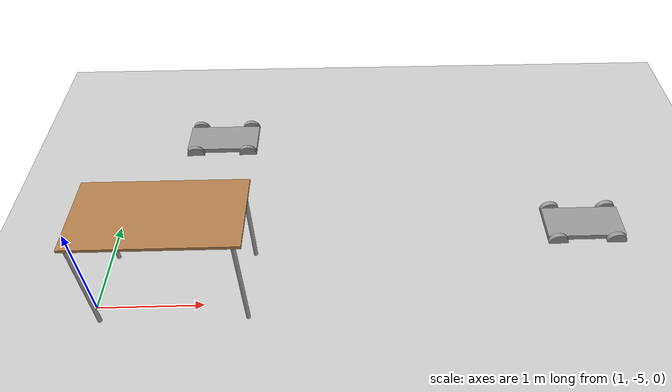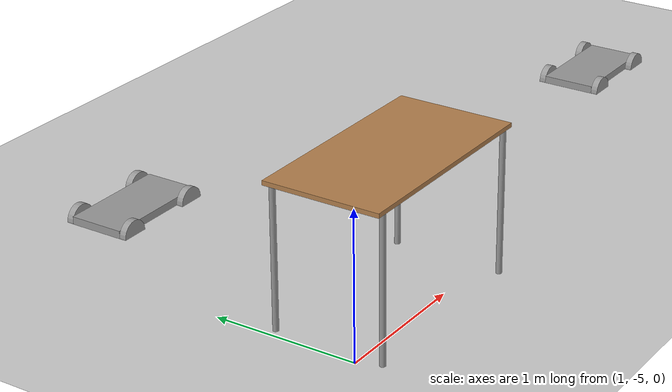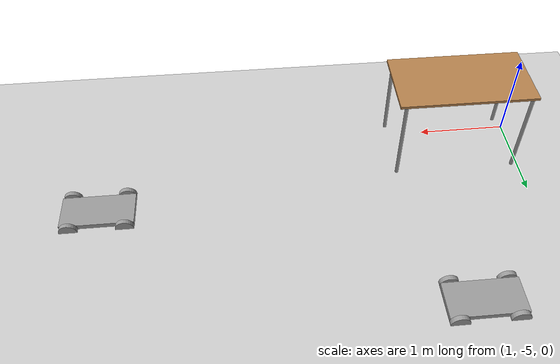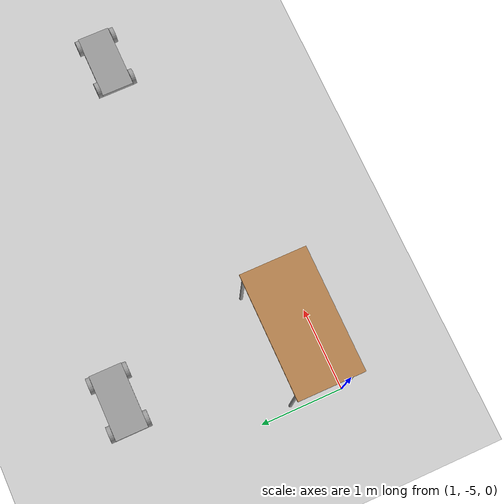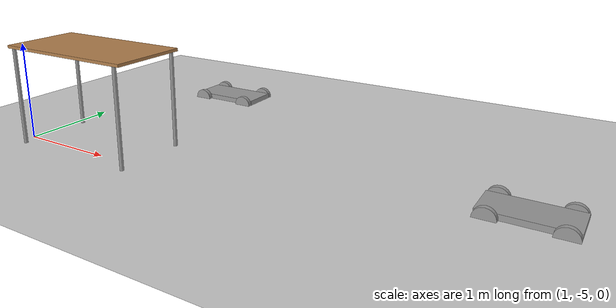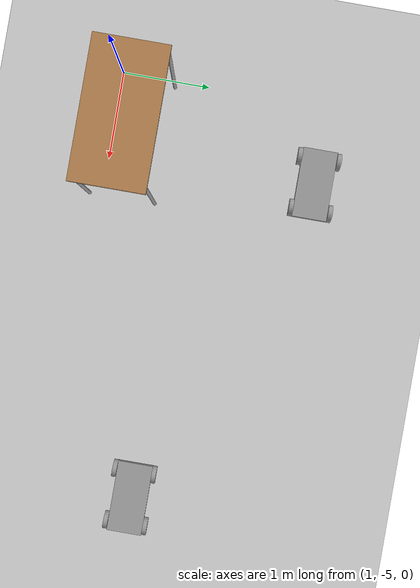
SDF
<sdf version="1.7">
 <world name="default">
  <model name="ground_plane">
   <static>1</static>
   <link name="link">
    <collision name="collision">
     <geometry><plane><normal>0 0 1</normal><size>100 100</size></plane></geometry>
     <surface>
      <contact><collide_bitmask>65535</collide_bitmask></contact>
      <friction><ode><mu>100</mu><mu2>50</mu2></ode></friction>
     </surface>
    </collision>
    <visual name="visual">
     <cast_shadows>0</cast_shadows>
     <geometry><plane><normal>0 0 1</normal><size>100 100</size></plane></geometry>
     <material>
      <script><uri>file://media/materials/scripts/gazebo.material</uri><name>Gazebo/Grey</name></script>
     </material>
    </visual>
   </link>
  </model>
  <model name="table">
   <static>1</static>
   <link name="link">
    <collision name="surface">
     <pose>0 0 1 0 -0 0</pose>
     <geometry><box><size>1.5 0.8 0.03</size></box></geometry>
     <surface><friction><ode><mu>0.6</mu><mu2>0.6</mu2></ode></friction></surface>
    </collision>
    <visual name="visual1">
     <pose>0 0 1 0 -0 0</pose>
     <geometry><box><size>1.5 0.8 0.03</size></box></geometry>
     <material>
      <script><uri>file://media/materials/scripts/gazebo.material</uri><name>Gazebo/Wood</name></script>
     </material>
    </visual>
    <collision name="front_left_leg">
     <pose>0.68 0.38 0.5 0 -0 0</pose>
     <geometry><cylinder><radius>0.02</radius><length>1</length></cylinder></geometry>
    </collision>
    <visual name="front_left_leg">
     <pose>0.68 0.38 0.5 0 -0 0</pose>
     <geometry><cylinder><radius>0.02</radius><length>1</length></cylinder></geometry>
     <material>
      <script><uri>file://media/materials/scripts/gazebo.material</uri><name>Gazebo/Grey</name></script>
     </material>
    </visual>
    <collision name="front_right_leg">
     <pose>0.68 -0.38 0.5 0 -0 0</pose>
     <geometry><cylinder><radius>0.02</radius><length>1</length></cylinder></geometry>
    </collision>
    <visual name="front_right_leg">
     <pose>0.68 -0.38 0.5 0 -0 0</pose>
     <geometry><cylinder><radius>0.02</radius><length>1</length></cylinder></geometry>
     <material>
      <script><uri>file://media/materials/scripts/gazebo.material</uri><name>Gazebo/Grey</name></script>
     </material>
    </visual>
    <collision name="back_right_leg">
     <pose>-0.68 -0.38 0.5 0 -0 0</pose>
     <geometry><cylinder><radius>0.02</radius><length>1</length></cylinder></geometry>
    </collision>
    <visual name="back_right_leg">
     <pose>-0.68 -0.38 0.5 0 -0 0</pose>
     <geometry><cylinder><radius>0.02</radius><length>1</length></cylinder></geometry>
     <material>
      <script><uri>file://media/materials/scripts/gazebo.material</uri><name>Gazebo/Grey</name></script>
     </material>
    </visual>
    <collision name="back_left_leg">
     <pose>-0.68 0.38 0.5 0 -0 0</pose>
     <geometry><cylinder><radius>0.02</radius><length>1</length></cylinder></geometry>
    </collision>
    <visual name="back_left_leg">
     <pose>-0.68 0.38 0.5 0 -0 0</pose>
     <geometry><cylinder><radius>0.02</radius><length>1</length></cylinder></geometry>
     <material>
      <script><uri>file://media/materials/scripts/gazebo.material</uri><name>Gazebo/Grey</name></script>
     </material>
    </visual>
   </link>
   <pose>1.7456 -4.76892 0 0 -0 0</pose>
  </model>
  <model name="FourWheelRobot_0">
   <link name="link_1">
    <pose>-0.3 -0.225 -0 1.5708 -0 0</pose>
    <inertial>
     <mass>1</mass>
     <inertia><ixx>0.145833</ixx><ixy>0</ixy><ixz>0</ixz><iyy>0.145833</iyy><iyz>0</iyz><izz>0.125</izz></inertia>
    </inertial>
    <visual name="visual">
     <geometry><cylinder><radius>0.1</radius><length>0.05</length></cylinder></geometry>
     <material>
      <lighting>1</lighting>
      <script><uri>file://media/materials/scripts/gazebo.material</uri><name>Gazebo/Grey</name></script>
      <shader type="pixel"><normal_map>__default__</normal_map></shader>
      <ambient>0.3 0.3 0.3 1</ambient>
      <diffuse>0.7 0.7 0.7 1</diffuse>
      <specular>0.01 0.01 0.01 1</specular>
      <emissive>0 0 0 1</emissive>
     </material>
    </visual>
    <collision name="collision">
     <geometry><cylinder><radius>0.1</radius><length>0.05</length></cylinder></geometry>
     <surface>
      <friction>
       <ode><mu>1</mu><mu2>1</mu2><fdir1>0 0 0</fdir1><slip1>0</slip1><slip2>0</slip2></ode>
       <torsional>
        <coefficient>1</coefficient>
        <patch_radius>0</patch_radius>
        <surface_radius>0</surface_radius>
        <use_patch_radius>1</use_patch_radius>
        <ode><slip>0</slip></ode>
       </torsional>
      </friction>
      <bounce><restitution_coefficient>0</restitution_coefficient><threshold>1e+06</threshold></bounce>
      <contact>
       <collide_without_contact>0</collide_without_contact>
       <collide_without_contact_bitmask>1</collide_without_contact_bitmask>
       <collide_bitmask>1</collide_bitmask>
       <ode>
        <soft_cfm>0</soft_cfm>
        <soft_erp>0.2</soft_erp>
        <kp>1e+13</kp>
        <kd>1</kd>
        <max_vel>0.01</max_vel>
        <min_depth>0</min_depth>
       </ode>
       <bullet>
        <split_impulse>1</split_impulse>
        <split_impulse_penetration_threshold>-0.01</split_impulse_penetration_threshold>
        <soft_cfm>0</soft_cfm>
        <soft_erp>0.2</soft_erp>
        <kp>1e+13</kp>
        <kd>1</kd>
       </bullet>
      </contact>
     </surface>
    </collision>
   </link>
   <link name="link_1_clone">
    <pose>-0.3 0.225 -0 1.5708 -0 0</pose>
    <inertial>
     <mass>1</mass>
     <inertia><ixx>0.145833</ixx><ixy>0</ixy><ixz>0</ixz><iyy>0.145833</iyy><iyz>0</iyz><izz>0.125</izz></inertia>
    </inertial>
    <visual name="visual">
     <geometry><cylinder><radius>0.1</radius><length>0.05</length></cylinder></geometry>
     <material>
      <lighting>1</lighting>
      <script><uri>file://media/materials/scripts/gazebo.material</uri><name>Gazebo/Grey</name></script>
      <shader type="pixel"><normal_map>__default__</normal_map></shader>
      <ambient>0.3 0.3 0.3 1</ambient>
      <diffuse>0.7 0.7 0.7 1</diffuse>
      <specular>0.01 0.01 0.01 1</specular>
      <emissive>0 0 0 1</emissive>
     </material>
    </visual>
    <collision name="collision">
     <geometry><cylinder><radius>0.1</radius><length>0.05</length></cylinder></geometry>
     <surface>
      <friction>
       <ode><mu>1</mu><mu2>1</mu2><fdir1>0 0 0</fdir1><slip1>0</slip1><slip2>0</slip2></ode>
       <torsional>
        <coefficient>1</coefficient>
        <patch_radius>0</patch_radius>
        <surface_radius>0</surface_radius>
        <use_patch_radius>1</use_patch_radius>
        <ode><slip>0</slip></ode>
       </torsional>
      </friction>
      <bounce><restitution_coefficient>0</restitution_coefficient><threshold>1e+06</threshold></bounce>
      <contact>
       <collide_without_contact>0</collide_without_contact>
       <collide_without_contact_bitmask>1</collide_without_contact_bitmask>
       <collide_bitmask>1</collide_bitmask>
       <ode>
        <soft_cfm>0</soft_cfm>
        <soft_erp>0.2</soft_erp>
        <kp>1e+13</kp>
        <kd>1</kd>
        <max_vel>0.01</max_vel>
        <min_depth>0</min_depth>
       </ode>
       <bullet>
        <split_impulse>1</split_impulse>
        <split_impulse_penetration_threshold>-0.01</split_impulse_penetration_threshold>
        <soft_cfm>0</soft_cfm>
        <soft_erp>0.2</soft_erp>
        <kp>1e+13</kp>
        <kd>1</kd>
       </bullet>
      </contact>
     </surface>
    </collision>
   </link>
   <link name="link_1_clone_0">
    <pose>0.3 -0.225 -0 1.5708 -0 0</pose>
    <inertial>
     <mass>1</mass>
     <inertia><ixx>0.145833</ixx><ixy>0</ixy><ixz>0</ixz><iyy>0.145833</iyy><iyz>0</iyz><izz>0.125</izz></inertia>
    </inertial>
    <visual name="visual">
     <geometry><cylinder><radius>0.1</radius><length>0.05</length></cylinder></geometry>
     <material>
      <lighting>1</lighting>
      <script><uri>file://media/materials/scripts/gazebo.material</uri><name>Gazebo/Grey</name></script>
      <shader type="pixel"><normal_map>__default__</normal_map></shader>
      <ambient>0.3 0.3 0.3 1</ambient>
      <diffuse>0.7 0.7 0.7 1</diffuse>
      <specular>0.01 0.01 0.01 1</specular>
      <emissive>0 0 0 1</emissive>
     </material>
    </visual>
    <collision name="collision">
     <geometry><cylinder><radius>0.1</radius><length>0.05</length></cylinder></geometry>
     <surface>
      <friction>
       <ode><mu>1</mu><mu2>1</mu2><fdir1>0 0 0</fdir1><slip1>0</slip1><slip2>0</slip2></ode>
       <torsional>
        <coefficient>1</coefficient>
        <patch_radius>0</patch_radius>
        <surface_radius>0</surface_radius>
        <use_patch_radius>1</use_patch_radius>
        <ode><slip>0</slip></ode>
       </torsional>
      </friction>
      <bounce><restitution_coefficient>0</restitution_coefficient><threshold>1e+06</threshold></bounce>
      <contact>
       <collide_without_contact>0</collide_without_contact>
       <collide_without_contact_bitmask>1</collide_without_contact_bitmask>
       <collide_bitmask>1</collide_bitmask>
       <ode>
        <soft_cfm>0</soft_cfm>
        <soft_erp>0.2</soft_erp>
        <kp>1e+13</kp>
        <kd>1</kd>
        <max_vel>0.01</max_vel>
        <min_depth>0</min_depth>
       </ode>
       <bullet>
        <split_impulse>1</split_impulse>
        <split_impulse_penetration_threshold>-0.01</split_impulse_penetration_threshold>
        <soft_cfm>0</soft_cfm>
        <soft_erp>0.2</soft_erp>
        <kp>1e+13</kp>
        <kd>1</kd>
       </bullet>
      </contact>
     </surface>
    </collision>
   </link>
   <link name="link_1_clone_1">
    <pose>0.3 0.225 -0 1.5708 -0 0</pose>
    <inertial>
     <mass>1</mass>
     <inertia><ixx>0.145833</ixx><ixy>0</ixy><ixz>0</ixz><iyy>0.145833</iyy><iyz>0</iyz><izz>0.125</izz></inertia>
    </inertial>
    <visual name="visual">
     <geometry><cylinder><radius>0.1</radius><length>0.05</length></cylinder></geometry>
     <material>
      <lighting>1</lighting>
      <script><uri>file://media/materials/scripts/gazebo.material</uri><name>Gazebo/Grey</name></script>
      <shader type="pixel"><normal_map>__default__</normal_map></shader>
      <ambient>0.3 0.3 0.3 1</ambient>
      <diffuse>0.7 0.7 0.7 1</diffuse>
      <specular>0.01 0.01 0.01 1</specular>
      <emissive>0 0 0 1</emissive>
     </material>
    </visual>
    <collision name="collision">
     <geometry><cylinder><radius>0.1</radius><length>0.05</length></cylinder></geometry>
     <surface>
      <friction>
       <ode><mu>1</mu><mu2>1</mu2><fdir1>0 0 0</fdir1><slip1>0</slip1><slip2>0</slip2></ode>
       <torsional>
        <coefficient>1</coefficient>
        <patch_radius>0</patch_radius>
        <surface_radius>0</surface_radius>
        <use_patch_radius>1</use_patch_radius>
        <ode><slip>0</slip></ode>
       </torsional>
      </friction>
      <bounce><restitution_coefficient>0</restitution_coefficient><threshold>1e+06</threshold></bounce>
      <contact>
       <collide_without_contact>0</collide_without_contact>
       <collide_without_contact_bitmask>1</collide_without_contact_bitmask>
       <collide_bitmask>1</collide_bitmask>
       <ode>
        <soft_cfm>0</soft_cfm>
        <soft_erp>0.2</soft_erp>
        <kp>1e+13</kp>
        <kd>1</kd>
        <max_vel>0.01</max_vel>
        <min_depth>0</min_depth>
       </ode>
       <bullet>
        <split_impulse>1</split_impulse>
        <split_impulse_penetration_threshold>-0.01</split_impulse_penetration_threshold>
        <soft_cfm>0</soft_cfm>
        <soft_erp>0.2</soft_erp>
        <kp>1e+13</kp>
        <kd>1</kd>
       </bullet>
      </contact>
     </surface>
    </collision>
   </link>
   <link name="link_2">
    <pose>0 0 2e-06 0 -0 0</pose>
    <inertial>
     <mass>1</mass>
     <inertia>
      <ixx>0.166667</ixx>
      <ixy>0</ixy>
      <ixz>0</ixz>
      <iyy>0.166667</iyy>
      <iyz>0</iyz>
      <izz>0.166667</izz>
     </inertia>
    </inertial>
    <visual name="visual">
     <geometry><box><size>0.8 0.4 0.1</size></box></geometry>
     <material>
      <lighting>1</lighting>
      <script><uri>file://media/materials/scripts/gazebo.material</uri><name>Gazebo/Grey</name></script>
      <shader type="pixel"><normal_map>__default__</normal_map></shader>
      <ambient>0.3 0.3 0.3 1</ambient>
      <diffuse>0.7 0.7 0.7 1</diffuse>
      <specular>0.01 0.01 0.01 1</specular>
      <emissive>0 0 0 1</emissive>
     </material>
    </visual>
    <collision name="collision">
     <geometry><box><size>0.8 0.4 0.1</size></box></geometry>
     <surface>
      <friction>
       <ode><mu>1</mu><mu2>1</mu2><fdir1>0 0 0</fdir1><slip1>0</slip1><slip2>0</slip2></ode>
       <torsional>
        <coefficient>1</coefficient>
        <patch_radius>0</patch_radius>
        <surface_radius>0</surface_radius>
        <use_patch_radius>1</use_patch_radius>
        <ode><slip>0</slip></ode>
       </torsional>
      </friction>
      <bounce><restitution_coefficient>0</restitution_coefficient><threshold>1e+06</threshold></bounce>
      <contact>
       <collide_without_contact>0</collide_without_contact>
       <collide_without_contact_bitmask>1</collide_without_contact_bitmask>
       <collide_bitmask>1</collide_bitmask>
       <ode>
        <soft_cfm>0</soft_cfm>
        <soft_erp>0.2</soft_erp>
        <kp>1e+13</kp>
        <kd>1</kd>
        <max_vel>0.01</max_vel>
        <min_depth>0</min_depth>
       </ode>
       <bullet>
        <split_impulse>1</split_impulse>
        <split_impulse_penetration_threshold>-0.01</split_impulse_penetration_threshold>
        <soft_cfm>0</soft_cfm>
        <soft_erp>0.2</soft_erp>
        <kp>1e+13</kp>
        <kd>1</kd>
       </bullet>
      </contact>
     </surface>
    </collision>
   </link>
   <joint name="link_2_JOINT_2" type="revolute">
    <parent>link_2</parent>
    <child>link_1</child>
    <axis>
     <xyz>0 0 1</xyz>
     <limit>
      <lower>-1.79769e+308</lower>
      <upper>1.79769e+308</upper>
      <effort>-1</effort>
      <velocity>-1</velocity>
     </limit>
     <dynamics>
      <spring_reference>0</spring_reference>
      <spring_stiffness>0</spring_stiffness>
      <damping>0</damping>
     </dynamics>
    </axis>
    <physics>
     <ode><limit><cfm>0</cfm><erp>0.2</erp></limit><suspension><cfm>0</cfm><erp>0.2</erp></suspension></ode>
    </physics>
   </joint>
   <joint name="link_2_JOINT_3" type="revolute">
    <parent>link_2</parent>
    <child>link_1_clone</child>
    <axis>
     <xyz>0 0 1</xyz>
     <limit>
      <lower>-1.79769e+308</lower>
      <upper>1.79769e+308</upper>
      <effort>-1</effort>
      <velocity>-1</velocity>
     </limit>
     <dynamics>
      <spring_reference>0</spring_reference>
      <spring_stiffness>0</spring_stiffness>
      <damping>0</damping>
     </dynamics>
    </axis>
    <physics>
     <ode><limit><cfm>0</cfm><erp>0.2</erp></limit><suspension><cfm>0</cfm><erp>0.2</erp></suspension></ode>
    </physics>
   </joint>
   <joint name="link_2_JOINT_4" type="revolute">
    <parent>link_2</parent>
    <child>link_1_clone_1</child>
    <axis>
     <xyz>0 0 1</xyz>
     <limit>
      <lower>-1.79769e+308</lower>
      <upper>1.79769e+308</upper>
      <effort>-1</effort>
      <velocity>-1</velocity>
     </limit>
     <dynamics>
      <spring_reference>0</spring_reference>
      <spring_stiffness>0</spring_stiffness>
      <damping>0</damping>
     </dynamics>
    </axis>
    <physics>
     <ode><limit><cfm>0</cfm><erp>0.2</erp></limit><suspension><cfm>0</cfm><erp>0.2</erp></suspension></ode>
    </physics>
   </joint>
   <joint name="link_2_JOINT_5" type="revolute">
    <parent>link_2</parent>
    <child>link_1_clone_0</child>
    <axis>
     <xyz>0 0 1</xyz>
     <limit>
      <lower>-1.79769e+308</lower>
      <upper>1.79769e+308</upper>
      <effort>-1</effort>
      <velocity>-1</velocity>
     </limit>
     <dynamics>
      <spring_reference>0</spring_reference>
      <spring_stiffness>0</spring_stiffness>
      <damping>0</damping>
     </dynamics>
    </axis>
    <physics>
     <ode><limit><cfm>0</cfm><erp>0.2</erp></limit><suspension><cfm>0</cfm><erp>0.2</erp></suspension></ode>
    </physics>
   </joint>
   <static>0</static>
   <pose>1.89606 -2.61808 -0 0 -0 0</pose>
  </model>
  <model name="FourWheelRobot_2">
   <link name="link_1">
    <pose>-0.3 -0.225 -0 1.5708 -0 0</pose>
    <inertial>
     <mass>1</mass>
     <inertia><ixx>0.145833</ixx><ixy>0</ixy><ixz>0</ixz><iyy>0.145833</iyy><iyz>0</iyz><izz>0.125</izz></inertia>
    </inertial>
    <visual name="visual">
     <geometry><cylinder><radius>0.1</radius><length>0.05</length></cylinder></geometry>
     <material>
      <lighting>1</lighting>
      <script><uri>file://media/materials/scripts/gazebo.material</uri><name>Gazebo/Grey</name></script>
      <shader type="pixel"><normal_map>__default__</normal_map></shader>
      <ambient>0.3 0.3 0.3 1</ambient>
      <diffuse>0.7 0.7 0.7 1</diffuse>
      <specular>0.01 0.01 0.01 1</specular>
      <emissive>0 0 0 1</emissive>
     </material>
    </visual>
    <collision name="collision">
     <geometry><cylinder><radius>0.1</radius><length>0.05</length></cylinder></geometry>
     <surface>
      <friction>
       <ode><mu>1</mu><mu2>1</mu2><fdir1>0 0 0</fdir1><slip1>0</slip1><slip2>0</slip2></ode>
       <torsional>
        <coefficient>1</coefficient>
        <patch_radius>0</patch_radius>
        <surface_radius>0</surface_radius>
        <use_patch_radius>1</use_patch_radius>
        <ode><slip>0</slip></ode>
       </torsional>
      </friction>
      <bounce><restitution_coefficient>0</restitution_coefficient><threshold>1e+06</threshold></bounce>
      <contact>
       <collide_without_contact>0</collide_without_contact>
       <collide_without_contact_bitmask>1</collide_without_contact_bitmask>
       <collide_bitmask>1</collide_bitmask>
       <ode>
        <soft_cfm>0</soft_cfm>
        <soft_erp>0.2</soft_erp>
        <kp>1e+13</kp>
        <kd>1</kd>
        <max_vel>0.01</max_vel>
        <min_depth>0</min_depth>
       </ode>
       <bullet>
        <split_impulse>1</split_impulse>
        <split_impulse_penetration_threshold>-0.01</split_impulse_penetration_threshold>
        <soft_cfm>0</soft_cfm>
        <soft_erp>0.2</soft_erp>
        <kp>1e+13</kp>
        <kd>1</kd>
       </bullet>
      </contact>
     </surface>
    </collision>
   </link>
   <link name="link_1_clone">
    <pose>-0.3 0.225 -0 1.5708 -0 0</pose>
    <inertial>
     <mass>1</mass>
     <inertia><ixx>0.145833</ixx><ixy>0</ixy><ixz>0</ixz><iyy>0.145833</iyy><iyz>0</iyz><izz>0.125</izz></inertia>
    </inertial>
    <visual name="visual">
     <geometry><cylinder><radius>0.1</radius><length>0.05</length></cylinder></geometry>
     <material>
      <lighting>1</lighting>
      <script><uri>file://media/materials/scripts/gazebo.material</uri><name>Gazebo/Grey</name></script>
      <shader type="pixel"><normal_map>__default__</normal_map></shader>
      <ambient>0.3 0.3 0.3 1</ambient>
      <diffuse>0.7 0.7 0.7 1</diffuse>
      <specular>0.01 0.01 0.01 1</specular>
      <emissive>0 0 0 1</emissive>
     </material>
    </visual>
    <collision name="collision">
     <geometry><cylinder><radius>0.1</radius><length>0.05</length></cylinder></geometry>
     <surface>
      <friction>
       <ode><mu>1</mu><mu2>1</mu2><fdir1>0 0 0</fdir1><slip1>0</slip1><slip2>0</slip2></ode>
       <torsional>
        <coefficient>1</coefficient>
        <patch_radius>0</patch_radius>
        <surface_radius>0</surface_radius>
        <use_patch_radius>1</use_patch_radius>
        <ode><slip>0</slip></ode>
       </torsional>
      </friction>
      <bounce><restitution_coefficient>0</restitution_coefficient><threshold>1e+06</threshold></bounce>
      <contact>
       <collide_without_contact>0</collide_without_contact>
       <collide_without_contact_bitmask>1</collide_without_contact_bitmask>
       <collide_bitmask>1</collide_bitmask>
       <ode>
        <soft_cfm>0</soft_cfm>
        <soft_erp>0.2</soft_erp>
        <kp>1e+13</kp>
        <kd>1</kd>
        <max_vel>0.01</max_vel>
        <min_depth>0</min_depth>
       </ode>
       <bullet>
        <split_impulse>1</split_impulse>
        <split_impulse_penetration_threshold>-0.01</split_impulse_penetration_threshold>
        <soft_cfm>0</soft_cfm>
        <soft_erp>0.2</soft_erp>
        <kp>1e+13</kp>
        <kd>1</kd>
       </bullet>
      </contact>
     </surface>
    </collision>
   </link>
   <link name="link_1_clone_0">
    <pose>0.3 -0.225 -0 1.5708 -0 0</pose>
    <inertial>
     <mass>1</mass>
     <inertia><ixx>0.145833</ixx><ixy>0</ixy><ixz>0</ixz><iyy>0.145833</iyy><iyz>0</iyz><izz>0.125</izz></inertia>
    </inertial>
    <visual name="visual">
     <geometry><cylinder><radius>0.1</radius><length>0.05</length></cylinder></geometry>
     <material>
      <lighting>1</lighting>
      <script><uri>file://media/materials/scripts/gazebo.material</uri><name>Gazebo/Grey</name></script>
      <shader type="pixel"><normal_map>__default__</normal_map></shader>
      <ambient>0.3 0.3 0.3 1</ambient>
      <diffuse>0.7 0.7 0.7 1</diffuse>
      <specular>0.01 0.01 0.01 1</specular>
      <emissive>0 0 0 1</emissive>
     </material>
    </visual>
    <collision name="collision">
     <geometry><cylinder><radius>0.1</radius><length>0.05</length></cylinder></geometry>
     <surface>
      <friction>
       <ode><mu>1</mu><mu2>1</mu2><fdir1>0 0 0</fdir1><slip1>0</slip1><slip2>0</slip2></ode>
       <torsional>
        <coefficient>1</coefficient>
        <patch_radius>0</patch_radius>
        <surface_radius>0</surface_radius>
        <use_patch_radius>1</use_patch_radius>
        <ode><slip>0</slip></ode>
       </torsional>
      </friction>
      <bounce><restitution_coefficient>0</restitution_coefficient><threshold>1e+06</threshold></bounce>
      <contact>
       <collide_without_contact>0</collide_without_contact>
       <collide_without_contact_bitmask>1</collide_without_contact_bitmask>
       <collide_bitmask>1</collide_bitmask>
       <ode>
        <soft_cfm>0</soft_cfm>
        <soft_erp>0.2</soft_erp>
        <kp>1e+13</kp>
        <kd>1</kd>
        <max_vel>0.01</max_vel>
        <min_depth>0</min_depth>
       </ode>
       <bullet>
        <split_impulse>1</split_impulse>
        <split_impulse_penetration_threshold>-0.01</split_impulse_penetration_threshold>
        <soft_cfm>0</soft_cfm>
        <soft_erp>0.2</soft_erp>
        <kp>1e+13</kp>
        <kd>1</kd>
       </bullet>
      </contact>
     </surface>
    </collision>
   </link>
   <link name="link_1_clone_1">
    <pose>0.3 0.225 -0 1.5708 -0 0</pose>
    <inertial>
     <mass>1</mass>
     <inertia><ixx>0.145833</ixx><ixy>0</ixy><ixz>0</ixz><iyy>0.145833</iyy><iyz>0</iyz><izz>0.125</izz></inertia>
    </inertial>
    <visual name="visual">
     <geometry><cylinder><radius>0.1</radius><length>0.05</length></cylinder></geometry>
     <material>
      <lighting>1</lighting>
      <script><uri>file://media/materials/scripts/gazebo.material</uri><name>Gazebo/Grey</name></script>
      <shader type="pixel"><normal_map>__default__</normal_map></shader>
      <ambient>0.3 0.3 0.3 1</ambient>
      <diffuse>0.7 0.7 0.7 1</diffuse>
      <specular>0.01 0.01 0.01 1</specular>
      <emissive>0 0 0 1</emissive>
     </material>
    </visual>
    <collision name="collision">
     <geometry><cylinder><radius>0.1</radius><length>0.05</length></cylinder></geometry>
     <surface>
      <friction>
       <ode><mu>1</mu><mu2>1</mu2><fdir1>0 0 0</fdir1><slip1>0</slip1><slip2>0</slip2></ode>
       <torsional>
        <coefficient>1</coefficient>
        <patch_radius>0</patch_radius>
        <surface_radius>0</surface_radius>
        <use_patch_radius>1</use_patch_radius>
        <ode><slip>0</slip></ode>
       </torsional>
      </friction>
      <bounce><restitution_coefficient>0</restitution_coefficient><threshold>1e+06</threshold></bounce>
      <contact>
       <collide_without_contact>0</collide_without_contact>
       <collide_without_contact_bitmask>1</collide_without_contact_bitmask>
       <collide_bitmask>1</collide_bitmask>
       <ode>
        <soft_cfm>0</soft_cfm>
        <soft_erp>0.2</soft_erp>
        <kp>1e+13</kp>
        <kd>1</kd>
        <max_vel>0.01</max_vel>
        <min_depth>0</min_depth>
       </ode>
       <bullet>
        <split_impulse>1</split_impulse>
        <split_impulse_penetration_threshold>-0.01</split_impulse_penetration_threshold>
        <soft_cfm>0</soft_cfm>
        <soft_erp>0.2</soft_erp>
        <kp>1e+13</kp>
        <kd>1</kd>
       </bullet>
      </contact>
     </surface>
    </collision>
   </link>
   <link name="link_2">
    <pose>0 0 2e-06 0 -0 0</pose>
    <inertial>
     <mass>1</mass>
     <inertia>
      <ixx>0.166667</ixx>
      <ixy>0</ixy>
      <ixz>0</ixz>
      <iyy>0.166667</iyy>
      <iyz>0</iyz>
      <izz>0.166667</izz>
     </inertia>
    </inertial>
    <visual name="visual">
     <geometry><box><size>0.8 0.4 0.1</size></box></geometry>
     <material>
      <lighting>1</lighting>
      <script><uri>file://media/materials/scripts/gazebo.material</uri><name>Gazebo/Grey</name></script>
      <shader type="pixel"><normal_map>__default__</normal_map></shader>
      <ambient>0.3 0.3 0.3 1</ambient>
      <diffuse>0.7 0.7 0.7 1</diffuse>
      <specular>0.01 0.01 0.01 1</specular>
      <emissive>0 0 0 1</emissive>
     </material>
    </visual>
    <collision name="collision">
     <geometry><box><size>0.8 0.4 0.1</size></box></geometry>
     <surface>
      <friction>
       <ode><mu>1</mu><mu2>1</mu2><fdir1>0 0 0</fdir1><slip1>0</slip1><slip2>0</slip2></ode>
       <torsional>
        <coefficient>1</coefficient>
        <patch_radius>0</patch_radius>
        <surface_radius>0</surface_radius>
        <use_patch_radius>1</use_patch_radius>
        <ode><slip>0</slip></ode>
       </torsional>
      </friction>
      <bounce><restitution_coefficient>0</restitution_coefficient><threshold>1e+06</threshold></bounce>
      <contact>
       <collide_without_contact>0</collide_without_contact>
       <collide_without_contact_bitmask>1</collide_without_contact_bitmask>
       <collide_bitmask>1</collide_bitmask>
       <ode>
        <soft_cfm>0</soft_cfm>
        <soft_erp>0.2</soft_erp>
        <kp>1e+13</kp>
        <kd>1</kd>
        <max_vel>0.01</max_vel>
        <min_depth>0</min_depth>
       </ode>
       <bullet>
        <split_impulse>1</split_impulse>
        <split_impulse_penetration_threshold>-0.01</split_impulse_penetration_threshold>
        <soft_cfm>0</soft_cfm>
        <soft_erp>0.2</soft_erp>
        <kp>1e+13</kp>
        <kd>1</kd>
       </bullet>
      </contact>
     </surface>
    </collision>
   </link>
   <joint name="link_2_JOINT_2" type="revolute">
    <parent>link_2</parent>
    <child>link_1</child>
    <axis>
     <xyz>0 0 1</xyz>
     <limit>
      <lower>-1.79769e+308</lower>
      <upper>1.79769e+308</upper>
      <effort>-1</effort>
      <velocity>-1</velocity>
     </limit>
     <dynamics>
      <spring_reference>0</spring_reference>
      <spring_stiffness>0</spring_stiffness>
      <damping>0</damping>
     </dynamics>
    </axis>
    <physics>
     <ode><limit><cfm>0</cfm><erp>0.2</erp></limit><suspension><cfm>0</cfm><erp>0.2</erp></suspension></ode>
    </physics>
   </joint>
   <joint name="link_2_JOINT_3" type="revolute">
    <parent>link_2</parent>
    <child>link_1_clone</child>
    <axis>
     <xyz>0 0 1</xyz>
     <limit>
      <lower>-1.79769e+308</lower>
      <upper>1.79769e+308</upper>
      <effort>-1</effort>
      <velocity>-1</velocity>
     </limit>
     <dynamics>
      <spring_reference>0</spring_reference>
      <spring_stiffness>0</spring_stiffness>
      <damping>0</damping>
     </dynamics>
    </axis>
    <physics>
     <ode><limit><cfm>0</cfm><erp>0.2</erp></limit><suspension><cfm>0</cfm><erp>0.2</erp></suspension></ode>
    </physics>
   </joint>
   <joint name="link_2_JOINT_4" type="revolute">
    <parent>link_2</parent>
    <child>link_1_clone_1</child>
    <axis>
     <xyz>0 0 1</xyz>
     <limit>
      <lower>-1.79769e+308</lower>
      <upper>1.79769e+308</upper>
      <effort>-1</effort>
      <velocity>-1</velocity>
     </limit>
     <dynamics>
      <spring_reference>0</spring_reference>
      <spring_stiffness>0</spring_stiffness>
      <damping>0</damping>
     </dynamics>
    </axis>
    <physics>
     <ode><limit><cfm>0</cfm><erp>0.2</erp></limit><suspension><cfm>0</cfm><erp>0.2</erp></suspension></ode>
    </physics>
   </joint>
   <joint name="link_2_JOINT_5" type="revolute">
    <parent>link_2</parent>
    <child>link_1_clone_0</child>
    <axis>
     <xyz>0 0 1</xyz>
     <limit>
      <lower>-1.79769e+308</lower>
      <upper>1.79769e+308</upper>
      <effort>-1</effort>
      <velocity>-1</velocity>
     </limit>
     <dynamics>
      <spring_reference>0</spring_reference>
      <spring_stiffness>0</spring_stiffness>
      <damping>0</damping>
     </dynamics>
    </axis>
    <physics>
     <ode><limit><cfm>0</cfm><erp>0.2</erp></limit><suspension><cfm>0</cfm><erp>0.2</erp></suspension></ode>
    </physics>
   </joint>
   <static>0</static>
   <pose>5.79486 -4.08583 -0 0 -0 0</pose>
  </model>
 </world>
</sdf>
